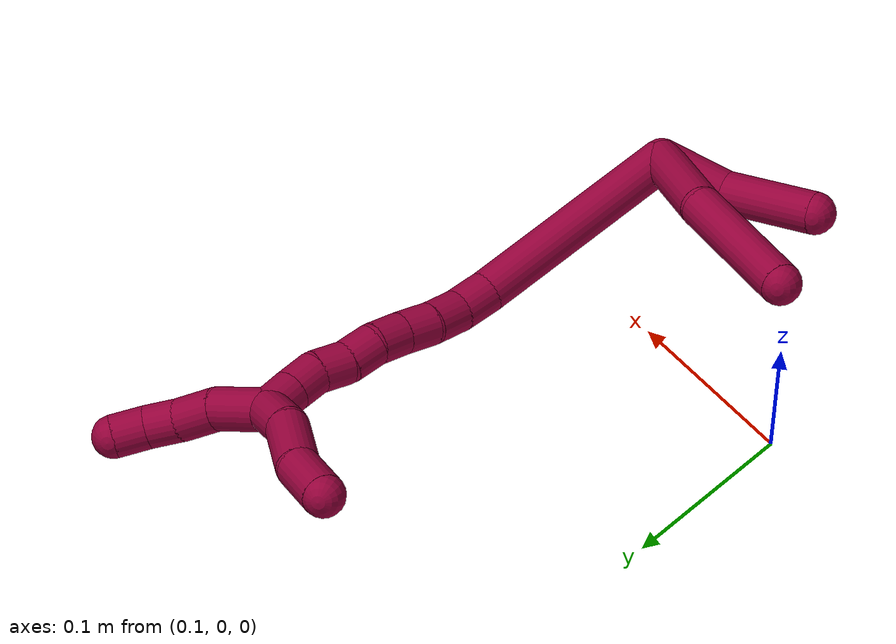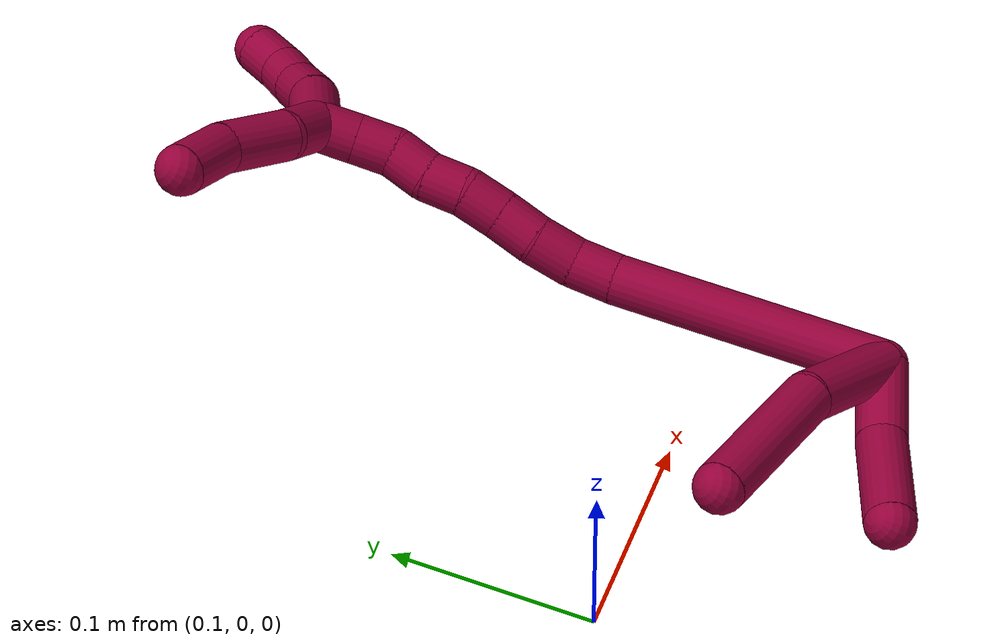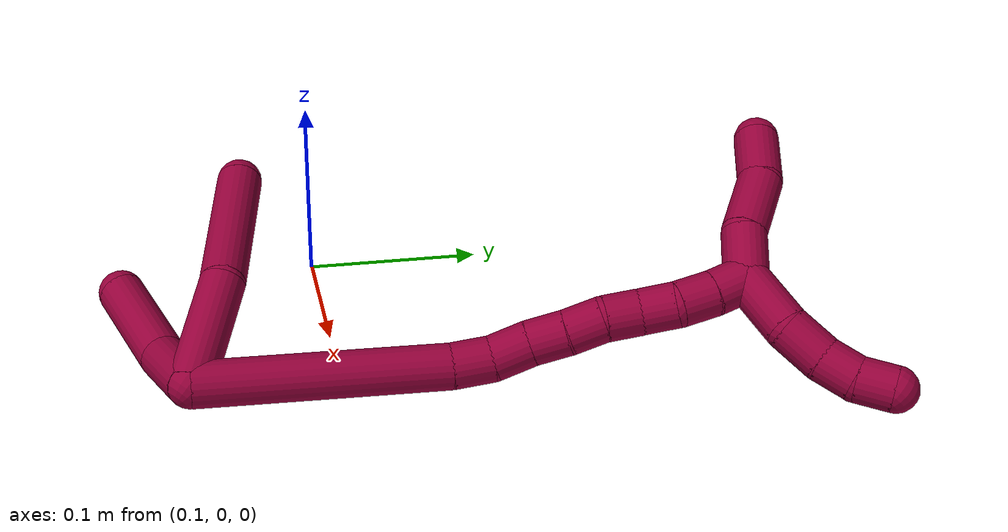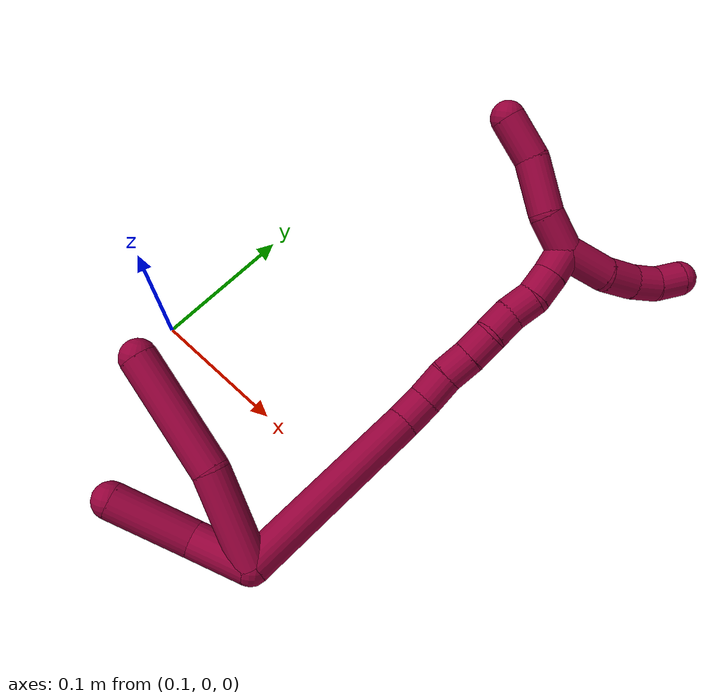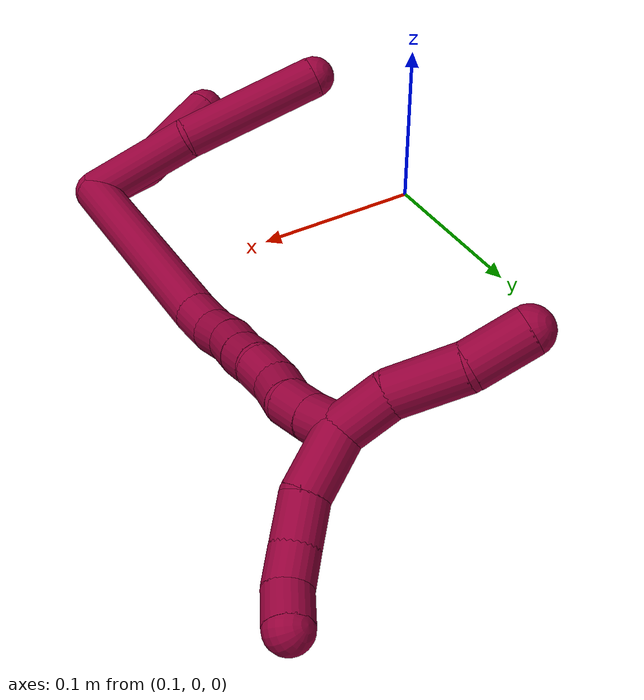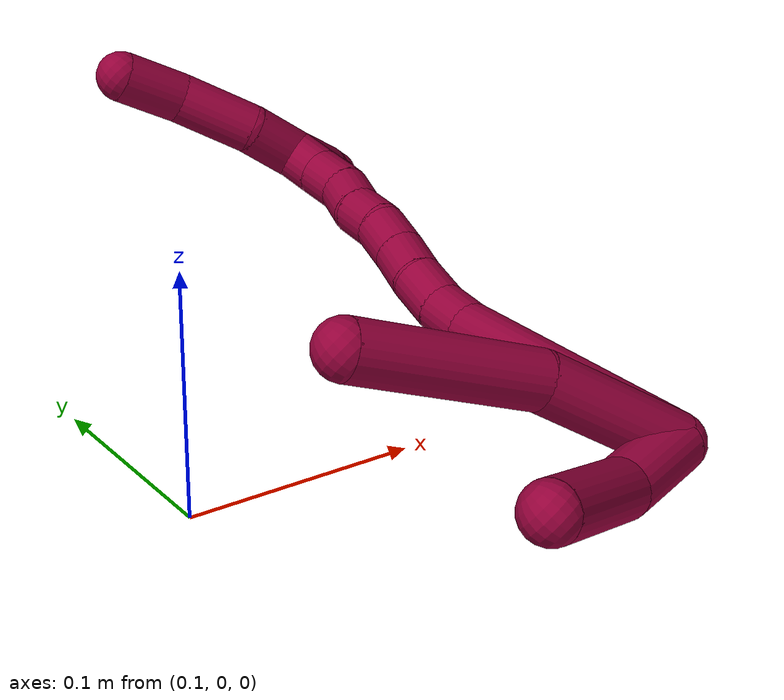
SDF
<sdf version="1.7">
 <world name="default">
  <model name="8">
   <static>0</static>
   <link name="8">
    <collision name="collision-cylinder-e_1_2_8">
     <pose>-0.015916 -0.005683 0.028182 0.198987 -0.505608 -0.051563</pose>
     <geometry><cylinder><radius>0.0125</radius><length>0.065722</length></cylinder></geometry>
     <surface>
      <friction><ode><mu>1.16</mu><mu2>1.16</mu2><slip1>0</slip1><slip2>0</slip2></ode></friction>
      <contact><ode><kp>1e+06</kp><kd>1</kd><max_vel>0</max_vel><min_depth>0.001</min_depth></ode></contact>
     </surface>
    </collision>
    <visual name="visual-cylinder-e_1_2_8">
     <pose>-0.015916 -0.005683 0.028182 0.198987 -0.505608 -0.051563</pose>
     <geometry><cylinder><radius>0.0125</radius><length>0.065722</length></cylinder></geometry>
     <material><ambient>0.584314 0 0.227451 1</ambient></material>
    </visual>
    <collision name="collision-cylinder-e_2_8_6">
     <pose>-0.06098 -0.017742 0.08612 0.211085 -0.763877 -0.08505</pose>
     <geometry><cylinder><radius>0.0125</radius><length>0.084278</length></cylinder></geometry>
     <surface>
      <friction><ode><mu>1.16</mu><mu2>1.16</mu2><slip1>0</slip1><slip2>0</slip2></ode></friction>
      <contact><ode><kp>1e+06</kp><kd>1</kd><max_vel>0</max_vel><min_depth>0.001</min_depth></ode></contact>
     </surface>
    </collision>
    <visual name="visual-cylinder-e_2_8_6">
     <pose>-0.06098 -0.017742 0.08612 0.211085 -0.763877 -0.08505</pose>
     <geometry><cylinder><radius>0.0125</radius><length>0.084278</length></cylinder></geometry>
     <material><ambient>0.584314 0 0.227451 1</ambient></material>
    </visual>
    <collision name="collision-cylinder-e_1_2_9">
     <pose>-0.020209 -0.005023 0.003266 0.994351 -1.28258 -0.769808</pose>
     <geometry><cylinder><radius>0.0125</radius><length>0.042156</length></cylinder></geometry>
     <surface>
      <friction><ode><mu>1.16</mu><mu2>1.16</mu2><slip1>0</slip1><slip2>0</slip2></ode></friction>
      <contact><ode><kp>1e+06</kp><kd>1</kd><max_vel>0</max_vel><min_depth>0.001</min_depth></ode></contact>
     </surface>
    </collision>
    <visual name="visual-cylinder-e_1_2_9">
     <pose>-0.020209 -0.005023 0.003266 0.994351 -1.28258 -0.769808</pose>
     <geometry><cylinder><radius>0.0125</radius><length>0.042156</length></cylinder></geometry>
     <material><ambient>0.584314 0 0.227451 1</ambient></material>
    </visual>
    <collision name="collision-cylinder-e_2_9_5">
     <pose>-0.063851 -0.024355 0.015619 1.00494 -0.944547 -0.547332</pose>
     <geometry><cylinder><radius>0.0125</radius><length>0.057844</length></cylinder></geometry>
     <surface>
      <friction><ode><mu>1.16</mu><mu2>1.16</mu2><slip1>0</slip1><slip2>0</slip2></ode></friction>
      <contact><ode><kp>1e+06</kp><kd>1</kd><max_vel>0</max_vel><min_depth>0.001</min_depth></ode></contact>
     </surface>
    </collision>
    <visual name="visual-cylinder-e_2_9_5">
     <pose>-0.063851 -0.024355 0.015619 1.00494 -0.944547 -0.547332</pose>
     <geometry><cylinder><radius>0.0125</radius><length>0.057844</length></cylinder></geometry>
     <material><ambient>0.584314 0 0.227451 1</ambient></material>
    </visual>
    <collision name="collision-cylinder-e_1_2_10">
     <pose>0.017918 0.0484 0.043886 -0.834275 0.267671 -0.119189</pose>
     <geometry><cylinder><radius>0.0125</radius><length>0.135493</length></cylinder></geometry>
     <surface>
      <friction><ode><mu>1.16</mu><mu2>1.16</mu2><slip1>0</slip1><slip2>0</slip2></ode></friction>
      <contact><ode><kp>1e+06</kp><kd>1</kd><max_vel>0</max_vel><min_depth>0.001</min_depth></ode></contact>
     </surface>
    </collision>
    <visual name="visual-cylinder-e_1_2_10">
     <pose>0.017918 0.0484 0.043886 -0.834275 0.267671 -0.119189</pose>
     <geometry><cylinder><radius>0.0125</radius><length>0.135493</length></cylinder></geometry>
     <material><ambient>0.584314 0 0.227451 1</ambient></material>
    </visual>
    <collision name="collision-cylinder-e_2_10_11">
     <pose>0.039213 0.103627 0.095696 -0.711132 0.312342 -0.116807</pose>
     <geometry><cylinder><radius>0.0125</radius><length>0.021982</length></cylinder></geometry>
     <surface>
      <friction><ode><mu>1.16</mu><mu2>1.16</mu2><slip1>0</slip1><slip2>0</slip2></ode></friction>
      <contact><ode><kp>1e+06</kp><kd>1</kd><max_vel>0</max_vel><min_depth>0.001</min_depth></ode></contact>
     </surface>
    </collision>
    <visual name="visual-cylinder-e_2_10_11">
     <pose>0.039213 0.103627 0.095696 -0.711132 0.312342 -0.116807</pose>
     <geometry><cylinder><radius>0.0125</radius><length>0.021982</length></cylinder></geometry>
     <material><ambient>0.584314 0 0.227451 1</ambient></material>
    </visual>
    <collision name="collision-cylinder-e_3_11_12">
     <pose>0.046684 0.115018 0.112602 -0.470163 0.385897 -0.093522</pose>
     <geometry><cylinder><radius>0.0125</radius><length>0.021749</length></cylinder></geometry>
     <surface>
      <friction><ode><mu>1.16</mu><mu2>1.16</mu2><slip1>0</slip1><slip2>0</slip2></ode></friction>
      <contact><ode><kp>1e+06</kp><kd>1</kd><max_vel>0</max_vel><min_depth>0.001</min_depth></ode></contact>
     </surface>
    </collision>
    <visual name="visual-cylinder-e_3_11_12">
     <pose>0.046684 0.115018 0.112602 -0.470163 0.385897 -0.093522</pose>
     <geometry><cylinder><radius>0.0125</radius><length>0.021749</length></cylinder></geometry>
     <material><ambient>0.584314 0 0.227451 1</ambient></material>
    </visual>
    <collision name="collision-cylinder-e_4_12_13">
     <pose>0.055909 0.124376 0.12918 -0.562962 0.519108 -0.153268</pose>
     <geometry><cylinder><radius>0.0125</radius><length>0.020691</length></cylinder></geometry>
     <surface>
      <friction><ode><mu>1.16</mu><mu2>1.16</mu2><slip1>0</slip1><slip2>0</slip2></ode></friction>
      <contact><ode><kp>1e+06</kp><kd>1</kd><max_vel>0</max_vel><min_depth>0.001</min_depth></ode></contact>
     </surface>
    </collision>
    <visual name="visual-cylinder-e_4_12_13">
     <pose>0.055909 0.124376 0.12918 -0.562962 0.519108 -0.153268</pose>
     <geometry><cylinder><radius>0.0125</radius><length>0.020691</length></cylinder></geometry>
     <material><ambient>0.584314 0 0.227451 1</ambient></material>
    </visual>
    <collision name="collision-cylinder-e_5_13_14">
     <pose>0.065361 0.133412 0.144781 -0.48727 0.444912 -0.112336</pose>
     <geometry><cylinder><radius>0.0125</radius><length>0.020073</length></cylinder></geometry>
     <surface>
      <friction><ode><mu>1.16</mu><mu2>1.16</mu2><slip1>0</slip1><slip2>0</slip2></ode></friction>
      <contact><ode><kp>1e+06</kp><kd>1</kd><max_vel>0</max_vel><min_depth>0.001</min_depth></ode></contact>
     </surface>
    </collision>
    <visual name="visual-cylinder-e_5_13_14">
     <pose>0.065361 0.133412 0.144781 -0.48727 0.444912 -0.112336</pose>
     <geometry><cylinder><radius>0.0125</radius><length>0.020073</length></cylinder></geometry>
     <material><ambient>0.584314 0 0.227451 1</ambient></material>
    </visual>
    <collision name="collision-cylinder-e_6_14_15">
     <pose>0.072704 0.143827 0.16005 -0.704412 0.307098 -0.113641</pose>
     <geometry><cylinder><radius>0.0125</radius><length>0.020001</length></cylinder></geometry>
     <surface>
      <friction><ode><mu>1.16</mu><mu2>1.16</mu2><slip1>0</slip1><slip2>0</slip2></ode></friction>
      <contact><ode><kp>1e+06</kp><kd>1</kd><max_vel>0</max_vel><min_depth>0.001</min_depth></ode></contact>
     </surface>
    </collision>
    <visual name="visual-cylinder-e_6_14_15">
     <pose>0.072704 0.143827 0.16005 -0.704412 0.307098 -0.113641</pose>
     <geometry><cylinder><radius>0.0125</radius><length>0.020001</length></cylinder></geometry>
     <material><ambient>0.584314 0 0.227451 1</ambient></material>
    </visual>
    <collision name="collision-cylinder-e_7_15_16">
     <pose>0.080974 0.155142 0.1741 -0.648387 0.552227 -0.189868</pose>
     <geometry><cylinder><radius>0.0125</radius><length>0.020003</length></cylinder></geometry>
     <surface>
      <friction><ode><mu>1.16</mu><mu2>1.16</mu2><slip1>0</slip1><slip2>0</slip2></ode></friction>
      <contact><ode><kp>1e+06</kp><kd>1</kd><max_vel>0</max_vel><min_depth>0.001</min_depth></ode></contact>
     </surface>
    </collision>
    <visual name="visual-cylinder-e_7_15_16">
     <pose>0.080974 0.155142 0.1741 -0.648387 0.552227 -0.189868</pose>
     <geometry><cylinder><radius>0.0125</radius><length>0.020003</length></cylinder></geometry>
     <material><ambient>0.584314 0 0.227451 1</ambient></material>
    </visual>
    <collision name="collision-cylinder-e_8_16_17">
     <pose>0.088476 0.165758 0.188949 -0.596516 0.227464 -0.070203</pose>
     <geometry><cylinder><radius>0.0125</radius><length>0.020004</length></cylinder></geometry>
     <surface>
      <friction><ode><mu>1.16</mu><mu2>1.16</mu2><slip1>0</slip1><slip2>0</slip2></ode></friction>
      <contact><ode><kp>1e+06</kp><kd>1</kd><max_vel>0</max_vel><min_depth>0.001</min_depth></ode></contact>
     </surface>
    </collision>
    <visual name="visual-cylinder-e_8_16_17">
     <pose>0.088476 0.165758 0.188949 -0.596516 0.227464 -0.070203</pose>
     <geometry><cylinder><radius>0.0125</radius><length>0.020004</length></cylinder></geometry>
     <material><ambient>0.584314 0 0.227451 1</ambient></material>
    </visual>
    <collision name="collision-cylinder-e_9_17_1">
     <pose>0.092543 0.175986 0.205621 -0.504438 0.182191 -0.047074</pose>
     <geometry><cylinder><radius>0.0125</radius><length>0.020005</length></cylinder></geometry>
     <surface>
      <friction><ode><mu>1.16</mu><mu2>1.16</mu2><slip1>0</slip1><slip2>0</slip2></ode></friction>
      <contact><ode><kp>1e+06</kp><kd>1</kd><max_vel>0</max_vel><min_depth>0.001</min_depth></ode></contact>
     </surface>
    </collision>
    <visual name="visual-cylinder-e_9_17_1">
     <pose>0.092543 0.175986 0.205621 -0.504438 0.182191 -0.047074</pose>
     <geometry><cylinder><radius>0.0125</radius><length>0.020005</length></cylinder></geometry>
     <material><ambient>0.584314 0 0.227451 1</ambient></material>
    </visual>
    <collision name="collision-cylinder-e_1_1_18">
     <pose>0.105776 0.192509 0.207985 -2.05886 0.708603 -1.10304</pose>
     <geometry><cylinder><radius>0.0125</radius><length>0.035098</length></cylinder></geometry>
     <surface>
      <friction><ode><mu>1.16</mu><mu2>1.16</mu2><slip1>0</slip1><slip2>0</slip2></ode></friction>
      <contact><ode><kp>1e+06</kp><kd>1</kd><max_vel>0</max_vel><min_depth>0.001</min_depth></ode></contact>
     </surface>
    </collision>
    <visual name="visual-cylinder-e_1_1_18">
     <pose>0.105776 0.192509 0.207985 -2.05886 0.708603 -1.10304</pose>
     <geometry><cylinder><radius>0.0125</radius><length>0.035098</length></cylinder></geometry>
     <material><ambient>0.584314 0 0.227451 1</ambient></material>
    </visual>
    <collision name="collision-cylinder-e_2_18_19">
     <pose>0.123526 0.214673 0.199855 -1.74987 0.539816 -0.639718</pose>
     <geometry><cylinder><radius>0.0125</radius><length>0.024631</length></cylinder></geometry>
     <surface>
      <friction><ode><mu>1.16</mu><mu2>1.16</mu2><slip1>0</slip1><slip2>0</slip2></ode></friction>
      <contact><ode><kp>1e+06</kp><kd>1</kd><max_vel>0</max_vel><min_depth>0.001</min_depth></ode></contact>
     </surface>
    </collision>
    <visual name="visual-cylinder-e_2_18_19">
     <pose>0.123526 0.214673 0.199855 -1.74987 0.539816 -0.639718</pose>
     <geometry><cylinder><radius>0.0125</radius><length>0.024631</length></cylinder></geometry>
     <material><ambient>0.584314 0 0.227451 1</ambient></material>
    </visual>
    <collision name="collision-cylinder-e_3_19_20">
     <pose>0.1361 0.232962 0.198017 -1.56522 0.669201 -0.665751</pose>
     <geometry><cylinder><radius>0.0125</radius><length>0.020128</length></cylinder></geometry>
     <surface>
      <friction><ode><mu>1.16</mu><mu2>1.16</mu2><slip1>0</slip1><slip2>0</slip2></ode></friction>
      <contact><ode><kp>1e+06</kp><kd>1</kd><max_vel>0</max_vel><min_depth>0.001</min_depth></ode></contact>
     </surface>
    </collision>
    <visual name="visual-cylinder-e_3_19_20">
     <pose>0.1361 0.232962 0.198017 -1.56522 0.669201 -0.665751</pose>
     <geometry><cylinder><radius>0.0125</radius><length>0.020128</length></cylinder></geometry>
     <material><ambient>0.584314 0 0.227451 1</ambient></material>
    </visual>
    <collision name="collision-cylinder-e_4_20_4">
     <pose>0.148492 0.248271 0.200998 -1.19371 0.656772 -0.455045</pose>
     <geometry><cylinder><radius>0.0125</radius><length>0.020143</length></cylinder></geometry>
     <surface>
      <friction><ode><mu>1.16</mu><mu2>1.16</mu2><slip1>0</slip1><slip2>0</slip2></ode></friction>
      <contact><ode><kp>1e+06</kp><kd>1</kd><max_vel>0</max_vel><min_depth>0.001</min_depth></ode></contact>
     </surface>
    </collision>
    <visual name="visual-cylinder-e_4_20_4">
     <pose>0.148492 0.248271 0.200998 -1.19371 0.656772 -0.455045</pose>
     <geometry><cylinder><radius>0.0125</radius><length>0.020143</length></cylinder></geometry>
     <material><ambient>0.584314 0 0.227451 1</ambient></material>
    </visual>
    <collision name="collision-cylinder-e_1_1_21">
     <pose>0.087288 0.176168 0.225892 0.373738 -0.513822 -0.099265</pose>
     <geometry><cylinder><radius>0.0125</radius><length>0.02876</length></cylinder></geometry>
     <surface>
      <friction><ode><mu>1.16</mu><mu2>1.16</mu2><slip1>0</slip1><slip2>0</slip2></ode></friction>
      <contact><ode><kp>1e+06</kp><kd>1</kd><max_vel>0</max_vel><min_depth>0.001</min_depth></ode></contact>
     </surface>
    </collision>
    <visual name="visual-cylinder-e_1_1_21">
     <pose>0.087288 0.176168 0.225892 0.373738 -0.513822 -0.099265</pose>
     <geometry><cylinder><radius>0.0125</radius><length>0.02876</length></cylinder></geometry>
     <material><ambient>0.584314 0 0.227451 1</ambient></material>
    </visual>
    <collision name="collision-cylinder-e_2_21_22">
     <pose>0.071597 0.171112 0.255031 0.027656 -0.458112 -0.006448</pose>
     <geometry><cylinder><radius>0.0125</radius><length>0.038995</length></cylinder></geometry>
     <surface>
      <friction><ode><mu>1.16</mu><mu2>1.16</mu2><slip1>0</slip1><slip2>0</slip2></ode></friction>
      <contact><ode><kp>1e+06</kp><kd>1</kd><max_vel>0</max_vel><min_depth>0.001</min_depth></ode></contact>
     </surface>
    </collision>
    <visual name="visual-cylinder-e_2_21_22">
     <pose>0.071597 0.171112 0.255031 0.027656 -0.458112 -0.006448</pose>
     <geometry><cylinder><radius>0.0125</radius><length>0.038995</length></cylinder></geometry>
     <material><ambient>0.584314 0 0.227451 1</ambient></material>
    </visual>
    <collision name="collision-cylinder-e_3_22_3">
     <pose>0.0532 0.167066 0.284828 0.281588 -0.651316 -0.095647</pose>
     <geometry><cylinder><radius>0.0125</radius><length>0.032245</length></cylinder></geometry>
     <surface>
      <friction><ode><mu>1.16</mu><mu2>1.16</mu2><slip1>0</slip1><slip2>0</slip2></ode></friction>
      <contact><ode><kp>1e+06</kp><kd>1</kd><max_vel>0</max_vel><min_depth>0.001</min_depth></ode></contact>
     </surface>
    </collision>
    <visual name="visual-cylinder-e_3_22_3">
     <pose>0.0532 0.167066 0.284828 0.281588 -0.651316 -0.095647</pose>
     <geometry><cylinder><radius>0.0125</radius><length>0.032245</length></cylinder></geometry>
     <material><ambient>0.584314 0 0.227451 1</ambient></material>
    </visual>
    <collision name="collision-sphere-3">
     <pose>0.043426 0.163503 0.297145 0 -0 0</pose>
     <geometry><sphere><radius>0.0125</radius></sphere></geometry>
     <surface>
      <friction><ode><mu>1.16</mu><mu2>1.16</mu2><slip1>0</slip1><slip2>0</slip2></ode></friction>
      <contact><ode><kp>1e+06</kp><kd>1</kd><max_vel>0</max_vel><min_depth>0.001</min_depth></ode></contact>
     </surface>
    </collision>
    <visual name="visual-sphere-3">
     <pose>0.043426 0.163503 0.297145 0 -0 0</pose>
     <geometry><sphere><radius>0.0125</radius></sphere></geometry>
     <material><ambient>0.584314 0 0.227451 1</ambient></material>
    </visual>
    <collision name="collision-sphere-22">
     <pose>0.062974 0.170629 0.272511 0 -0 0</pose>
     <geometry><sphere><radius>0.0125</radius></sphere></geometry>
     <surface>
      <friction><ode><mu>1.16</mu><mu2>1.16</mu2><slip1>0</slip1><slip2>0</slip2></ode></friction>
      <contact><ode><kp>1e+06</kp><kd>1</kd><max_vel>0</max_vel><min_depth>0.001</min_depth></ode></contact>
     </surface>
    </collision>
    <visual name="visual-sphere-22">
     <pose>0.062974 0.170629 0.272511 0 -0 0</pose>
     <geometry><sphere><radius>0.0125</radius></sphere></geometry>
     <material><ambient>0.584314 0 0.227451 1</ambient></material>
    </visual>
    <collision name="collision-sphere-21">
     <pose>0.08022 0.171596 0.23755 0 -0 0</pose>
     <geometry><sphere><radius>0.0125</radius></sphere></geometry>
     <surface>
      <friction><ode><mu>1.16</mu><mu2>1.16</mu2><slip1>0</slip1><slip2>0</slip2></ode></friction>
      <contact><ode><kp>1e+06</kp><kd>1</kd><max_vel>0</max_vel><min_depth>0.001</min_depth></ode></contact>
     </surface>
    </collision>
    <visual name="visual-sphere-21">
     <pose>0.08022 0.171596 0.23755 0 -0 0</pose>
     <geometry><sphere><radius>0.0125</radius></sphere></geometry>
     <material><ambient>0.584314 0 0.227451 1</ambient></material>
    </visual>
    <collision name="collision-sphere-4">
     <pose>0.154641 0.255687 0.203935 0 -0 0</pose>
     <geometry><sphere><radius>0.0125</radius></sphere></geometry>
     <surface>
      <friction><ode><mu>1.16</mu><mu2>1.16</mu2><slip1>0</slip1><slip2>0</slip2></ode></friction>
      <contact><ode><kp>1e+06</kp><kd>1</kd><max_vel>0</max_vel><min_depth>0.001</min_depth></ode></contact>
     </surface>
    </collision>
    <visual name="visual-sphere-4">
     <pose>0.154641 0.255687 0.203935 0 -0 0</pose>
     <geometry><sphere><radius>0.0125</radius></sphere></geometry>
     <material><ambient>0.584314 0 0.227451 1</ambient></material>
    </visual>
    <collision name="collision-sphere-20">
     <pose>0.142343 0.240855 0.198061 0 -0 0</pose>
     <geometry><sphere><radius>0.0125</radius></sphere></geometry>
     <surface>
      <friction><ode><mu>1.16</mu><mu2>1.16</mu2><slip1>0</slip1><slip2>0</slip2></ode></friction>
      <contact><ode><kp>1e+06</kp><kd>1</kd><max_vel>0</max_vel><min_depth>0.001</min_depth></ode></contact>
     </surface>
    </collision>
    <visual name="visual-sphere-20">
     <pose>0.142343 0.240855 0.198061 0 -0 0</pose>
     <geometry><sphere><radius>0.0125</radius></sphere></geometry>
     <material><ambient>0.584314 0 0.227451 1</ambient></material>
    </visual>
    <collision name="collision-sphere-10">
     <pose>0.035836 0.0968 0.087772 0 -0 0</pose>
     <geometry><sphere><radius>0.0125</radius></sphere></geometry>
     <surface>
      <friction><ode><mu>1.16</mu><mu2>1.16</mu2><slip1>0</slip1><slip2>0</slip2></ode></friction>
      <contact><ode><kp>1e+06</kp><kd>1</kd><max_vel>0</max_vel><min_depth>0.001</min_depth></ode></contact>
     </surface>
    </collision>
    <visual name="visual-sphere-10">
     <pose>0.035836 0.0968 0.087772 0 -0 0</pose>
     <geometry><sphere><radius>0.0125</radius></sphere></geometry>
     <material><ambient>0.584314 0 0.227451 1</ambient></material>
    </visual>
    <collision name="collision-sphere-5">
     <pose>-0.087284 -0.038665 0.024708 0 -0 0</pose>
     <geometry><sphere><radius>0.0125</radius></sphere></geometry>
     <surface>
      <friction><ode><mu>1.16</mu><mu2>1.16</mu2><slip1>0</slip1><slip2>0</slip2></ode></friction>
      <contact><ode><kp>1e+06</kp><kd>1</kd><max_vel>0</max_vel><min_depth>0.001</min_depth></ode></contact>
     </surface>
    </collision>
    <visual name="visual-sphere-5">
     <pose>-0.087284 -0.038665 0.024708 0 -0 0</pose>
     <geometry><sphere><radius>0.0125</radius></sphere></geometry>
     <material><ambient>0.584314 0 0.227451 1</ambient></material>
    </visual>
    <collision name="collision-sphere-6">
     <pose>-0.090129 -0.024118 0.115876 0 -0 0</pose>
     <geometry><sphere><radius>0.0125</radius></sphere></geometry>
     <surface>
      <friction><ode><mu>1.16</mu><mu2>1.16</mu2><slip1>0</slip1><slip2>0</slip2></ode></friction>
      <contact><ode><kp>1e+06</kp><kd>1</kd><max_vel>0</max_vel><min_depth>0.001</min_depth></ode></contact>
     </surface>
    </collision>
    <visual name="visual-sphere-6">
     <pose>-0.090129 -0.024118 0.115876 0 -0 0</pose>
     <geometry><sphere><radius>0.0125</radius></sphere></geometry>
     <material><ambient>0.584314 0 0.227451 1</ambient></material>
    </visual>
    <collision name="collision-sphere-9">
     <pose>-0.040418 -0.010046 0.006531 0 -0 0</pose>
     <geometry><sphere><radius>0.0125</radius></sphere></geometry>
     <surface>
      <friction><ode><mu>1.16</mu><mu2>1.16</mu2><slip1>0</slip1><slip2>0</slip2></ode></friction>
      <contact><ode><kp>1e+06</kp><kd>1</kd><max_vel>0</max_vel><min_depth>0.001</min_depth></ode></contact>
     </surface>
    </collision>
    <visual name="visual-sphere-9">
     <pose>-0.040418 -0.010046 0.006531 0 -0 0</pose>
     <geometry><sphere><radius>0.0125</radius></sphere></geometry>
     <material><ambient>0.584314 0 0.227451 1</ambient></material>
    </visual>
    <collision name="collision-sphere-2">
     <geometry><sphere><radius>0.0125</radius></sphere></geometry>
     <surface>
      <friction><ode><mu>1.16</mu><mu2>1.16</mu2><slip1>0</slip1><slip2>0</slip2></ode></friction>
      <contact><ode><kp>1e+06</kp><kd>1</kd><max_vel>0</max_vel><min_depth>0.001</min_depth></ode></contact>
     </surface>
    </collision>
    <visual name="visual-sphere-2">
     <geometry><sphere><radius>0.0125</radius></sphere></geometry>
     <material><ambient>0.584314 0 0.227451 1</ambient></material>
    </visual>
    <collision name="collision-sphere-19">
     <pose>0.129856 0.225069 0.197973 0 -0 0</pose>
     <geometry><sphere><radius>0.0125</radius></sphere></geometry>
     <surface>
      <friction><ode><mu>1.16</mu><mu2>1.16</mu2><slip1>0</slip1><slip2>0</slip2></ode></friction>
      <contact><ode><kp>1e+06</kp><kd>1</kd><max_vel>0</max_vel><min_depth>0.001</min_depth></ode></contact>
     </surface>
    </collision>
    <visual name="visual-sphere-19">
     <pose>0.129856 0.225069 0.197973 0 -0 0</pose>
     <geometry><sphere><radius>0.0125</radius></sphere></geometry>
     <material><ambient>0.584314 0 0.227451 1</ambient></material>
    </visual>
    <collision name="collision-sphere-8">
     <pose>-0.031832 -0.011366 0.056364 0 -0 0</pose>
     <geometry><sphere><radius>0.0125</radius></sphere></geometry>
     <surface>
      <friction><ode><mu>1.16</mu><mu2>1.16</mu2><slip1>0</slip1><slip2>0</slip2></ode></friction>
      <contact><ode><kp>1e+06</kp><kd>1</kd><max_vel>0</max_vel><min_depth>0.001</min_depth></ode></contact>
     </surface>
    </collision>
    <visual name="visual-sphere-8">
     <pose>-0.031832 -0.011366 0.056364 0 -0 0</pose>
     <geometry><sphere><radius>0.0125</radius></sphere></geometry>
     <material><ambient>0.584314 0 0.227451 1</ambient></material>
    </visual>
    <collision name="collision-sphere-11">
     <pose>0.042591 0.110454 0.10362 0 -0 0</pose>
     <geometry><sphere><radius>0.0125</radius></sphere></geometry>
     <surface>
      <friction><ode><mu>1.16</mu><mu2>1.16</mu2><slip1>0</slip1><slip2>0</slip2></ode></friction>
      <contact><ode><kp>1e+06</kp><kd>1</kd><max_vel>0</max_vel><min_depth>0.001</min_depth></ode></contact>
     </surface>
    </collision>
    <visual name="visual-sphere-11">
     <pose>0.042591 0.110454 0.10362 0 -0 0</pose>
     <geometry><sphere><radius>0.0125</radius></sphere></geometry>
     <material><ambient>0.584314 0 0.227451 1</ambient></material>
    </visual>
    <collision name="collision-sphere-12">
     <pose>0.050777 0.119582 0.121583 0 -0 0</pose>
     <geometry><sphere><radius>0.0125</radius></sphere></geometry>
     <surface>
      <friction><ode><mu>1.16</mu><mu2>1.16</mu2><slip1>0</slip1><slip2>0</slip2></ode></friction>
      <contact><ode><kp>1e+06</kp><kd>1</kd><max_vel>0</max_vel><min_depth>0.001</min_depth></ode></contact>
     </surface>
    </collision>
    <visual name="visual-sphere-12">
     <pose>0.050777 0.119582 0.121583 0 -0 0</pose>
     <geometry><sphere><radius>0.0125</radius></sphere></geometry>
     <material><ambient>0.584314 0 0.227451 1</ambient></material>
    </visual>
    <collision name="collision-sphere-13">
     <pose>0.061042 0.12917 0.136776 0 -0 0</pose>
     <geometry><sphere><radius>0.0125</radius></sphere></geometry>
     <surface>
      <friction><ode><mu>1.16</mu><mu2>1.16</mu2><slip1>0</slip1><slip2>0</slip2></ode></friction>
      <contact><ode><kp>1e+06</kp><kd>1</kd><max_vel>0</max_vel><min_depth>0.001</min_depth></ode></contact>
     </surface>
    </collision>
    <visual name="visual-sphere-13">
     <pose>0.061042 0.12917 0.136776 0 -0 0</pose>
     <geometry><sphere><radius>0.0125</radius></sphere></geometry>
     <material><ambient>0.584314 0 0.227451 1</ambient></material>
    </visual>
    <collision name="collision-sphere-14">
     <pose>0.069681 0.137653 0.152786 0 -0 0</pose>
     <geometry><sphere><radius>0.0125</radius></sphere></geometry>
     <surface>
      <friction><ode><mu>1.16</mu><mu2>1.16</mu2><slip1>0</slip1><slip2>0</slip2></ode></friction>
      <contact><ode><kp>1e+06</kp><kd>1</kd><max_vel>0</max_vel><min_depth>0.001</min_depth></ode></contact>
     </surface>
    </collision>
    <visual name="visual-sphere-14">
     <pose>0.069681 0.137653 0.152786 0 -0 0</pose>
     <geometry><sphere><radius>0.0125</radius></sphere></geometry>
     <material><ambient>0.584314 0 0.227451 1</ambient></material>
    </visual>
    <collision name="collision-sphere-15">
     <pose>0.075727 0.15 0.167314 0 -0 0</pose>
     <geometry><sphere><radius>0.0125</radius></sphere></geometry>
     <surface>
      <friction><ode><mu>1.16</mu><mu2>1.16</mu2><slip1>0</slip1><slip2>0</slip2></ode></friction>
      <contact><ode><kp>1e+06</kp><kd>1</kd><max_vel>0</max_vel><min_depth>0.001</min_depth></ode></contact>
     </surface>
    </collision>
    <visual name="visual-sphere-15">
     <pose>0.075727 0.15 0.167314 0 -0 0</pose>
     <geometry><sphere><radius>0.0125</radius></sphere></geometry>
     <material><ambient>0.584314 0 0.227451 1</ambient></material>
    </visual>
    <collision name="collision-sphere-16">
     <pose>0.08622 0.160284 0.180887 0 -0 0</pose>
     <geometry><sphere><radius>0.0125</radius></sphere></geometry>
     <surface>
      <friction><ode><mu>1.16</mu><mu2>1.16</mu2><slip1>0</slip1><slip2>0</slip2></ode></friction>
      <contact><ode><kp>1e+06</kp><kd>1</kd><max_vel>0</max_vel><min_depth>0.001</min_depth></ode></contact>
     </surface>
    </collision>
    <visual name="visual-sphere-16">
     <pose>0.08622 0.160284 0.180887 0 -0 0</pose>
     <geometry><sphere><radius>0.0125</radius></sphere></geometry>
     <material><ambient>0.584314 0 0.227451 1</ambient></material>
    </visual>
    <collision name="collision-sphere-17">
     <pose>0.090731 0.171232 0.19701 0 -0 0</pose>
     <geometry><sphere><radius>0.0125</radius></sphere></geometry>
     <surface>
      <friction><ode><mu>1.16</mu><mu2>1.16</mu2><slip1>0</slip1><slip2>0</slip2></ode></friction>
      <contact><ode><kp>1e+06</kp><kd>1</kd><max_vel>0</max_vel><min_depth>0.001</min_depth></ode></contact>
     </surface>
    </collision>
    <visual name="visual-sphere-17">
     <pose>0.090731 0.171232 0.19701 0 -0 0</pose>
     <geometry><sphere><radius>0.0125</radius></sphere></geometry>
     <material><ambient>0.584314 0 0.227451 1</ambient></material>
    </visual>
    <collision name="collision-sphere-1">
     <pose>0.094356 0.18074 0.214233 0 -0 0</pose>
     <geometry><sphere><radius>0.0125</radius></sphere></geometry>
     <surface>
      <friction><ode><mu>1.16</mu><mu2>1.16</mu2><slip1>0</slip1><slip2>0</slip2></ode></friction>
      <contact><ode><kp>1e+06</kp><kd>1</kd><max_vel>0</max_vel><min_depth>0.001</min_depth></ode></contact>
     </surface>
    </collision>
    <visual name="visual-sphere-1">
     <pose>0.094356 0.18074 0.214233 0 -0 0</pose>
     <geometry><sphere><radius>0.0125</radius></sphere></geometry>
     <material><ambient>0.584314 0 0.227451 1</ambient></material>
    </visual>
    <collision name="collision-sphere-18">
     <pose>0.117196 0.204278 0.201737 0 -0 0</pose>
     <geometry><sphere><radius>0.0125</radius></sphere></geometry>
     <surface>
      <friction><ode><mu>1.16</mu><mu2>1.16</mu2><slip1>0</slip1><slip2>0</slip2></ode></friction>
      <contact><ode><kp>1e+06</kp><kd>1</kd><max_vel>0</max_vel><min_depth>0.001</min_depth></ode></contact>
     </surface>
    </collision>
    <visual name="visual-sphere-18">
     <pose>0.117196 0.204278 0.201737 0 -0 0</pose>
     <geometry><sphere><radius>0.0125</radius></sphere></geometry>
     <material><ambient>0.584314 0 0.227451 1</ambient></material>
    </visual>
    <inertial>
     <pose>0.029655 0.086368 0.115585 0 -0 0</pose>
     <mass>0.75</mass>
     <inertia>
      <ixx>0.000254</ixx>
      <ixy>0</ixy>
      <ixz>0</ixz>
      <iyy>0.000245</iyy>
      <iyz>0</iyz>
      <izz>-9.5e-05</izz>
     </inertia>
    </inertial>
   </link>
   <pose>0.273129 -0.079579 0.015226 -0.843033 -0.339633 0.268263</pose>
  </model>
 </world>
</sdf>
